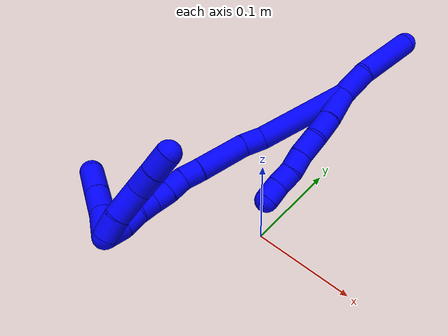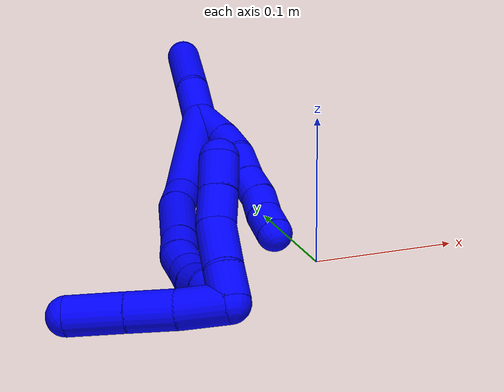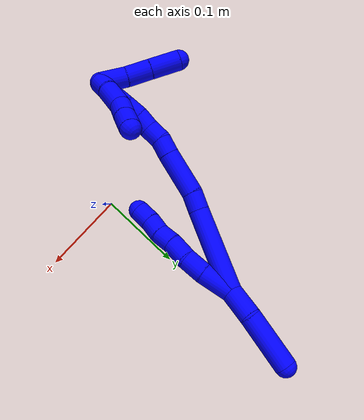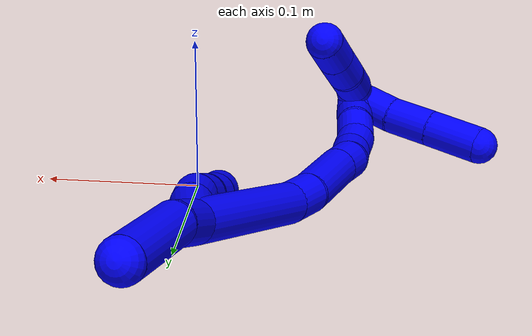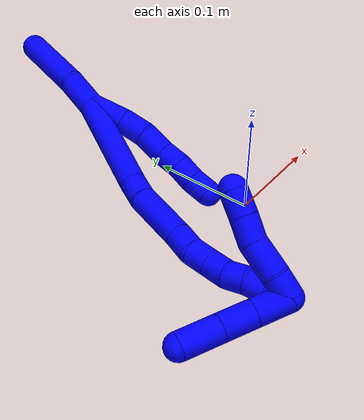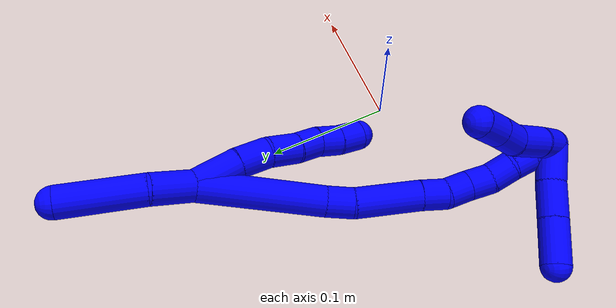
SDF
<sdf version="1.7">
 <world name="default">
  <model name="1">
   <static>0</static>
   <link name="1">
    <collision name="collision-cylinder-e_1_2_8">
     <pose>0.006575 -0.00136 -0.017717 3.06496 0.354384 2.71982</pose>
     <geometry><cylinder><radius>0.0125</radius><length>0.037893</length></cylinder></geometry>
     <surface>
      <friction><ode><mu>1.16</mu><mu2>1.16</mu2><slip1>0</slip1><slip2>0</slip2></ode></friction>
      <contact><ode><kp>1e+06</kp><kd>1</kd><max_vel>0</max_vel><min_depth>0.001</min_depth></ode></contact>
     </surface>
    </collision>
    <visual name="visual-cylinder-e_1_2_8">
     <pose>0.006575 -0.00136 -0.017717 3.06496 0.354384 2.71982</pose>
     <geometry><cylinder><radius>0.0125</radius><length>0.037893</length></cylinder></geometry>
     <material><ambient>0 0 1 1</ambient></material>
    </visual>
    <collision name="collision-cylinder-e_2_8_9">
     <pose>0.016116 -0.004175 -0.047985 3.02623 0.230641 2.21671</pose>
     <geometry><cylinder><radius>0.0125</radius><length>0.025958</length></cylinder></geometry>
     <surface>
      <friction><ode><mu>1.16</mu><mu2>1.16</mu2><slip1>0</slip1><slip2>0</slip2></ode></friction>
      <contact><ode><kp>1e+06</kp><kd>1</kd><max_vel>0</max_vel><min_depth>0.001</min_depth></ode></contact>
     </surface>
    </collision>
    <visual name="visual-cylinder-e_2_8_9">
     <pose>0.016116 -0.004175 -0.047985 3.02623 0.230641 2.21671</pose>
     <geometry><cylinder><radius>0.0125</radius><length>0.025958</length></cylinder></geometry>
     <material><ambient>0 0 1 1</ambient></material>
    </visual>
    <collision name="collision-cylinder-e_3_9_10">
     <pose>0.019458 -0.005854 -0.073402 3.12411 0.029086 2.05923</pose>
     <geometry><cylinder><radius>0.0125</radius><length>0.025745</length></cylinder></geometry>
     <surface>
      <friction><ode><mu>1.16</mu><mu2>1.16</mu2><slip1>0</slip1><slip2>0</slip2></ode></friction>
      <contact><ode><kp>1e+06</kp><kd>1</kd><max_vel>0</max_vel><min_depth>0.001</min_depth></ode></contact>
     </surface>
    </collision>
    <visual name="visual-cylinder-e_3_9_10">
     <pose>0.019458 -0.005854 -0.073402 3.12411 0.029086 2.05923</pose>
     <geometry><cylinder><radius>0.0125</radius><length>0.025745</length></cylinder></geometry>
     <material><ambient>0 0 1 1</ambient></material>
    </visual>
    <collision name="collision-cylinder-e_4_10_11">
     <pose>0.0215 -0.005412 -0.096281 -3.07506 0.164712 -2.37512</pose>
     <geometry><cylinder><radius>0.0125</radius><length>0.020349</length></cylinder></geometry>
     <surface>
      <friction><ode><mu>1.16</mu><mu2>1.16</mu2><slip1>0</slip1><slip2>0</slip2></ode></friction>
      <contact><ode><kp>1e+06</kp><kd>1</kd><max_vel>0</max_vel><min_depth>0.001</min_depth></ode></contact>
     </surface>
    </collision>
    <visual name="visual-cylinder-e_4_10_11">
     <pose>0.0215 -0.005412 -0.096281 -3.07506 0.164712 -2.37512</pose>
     <geometry><cylinder><radius>0.0125</radius><length>0.020349</length></cylinder></geometry>
     <material><ambient>0 0 1 1</ambient></material>
    </visual>
    <collision name="collision-cylinder-e_5_11_12">
     <pose>0.022927 -0.00556 -0.116279 3.06006 -0.024073 -0.573949</pose>
     <geometry><cylinder><radius>0.0125</radius><length>0.020038</length></cylinder></geometry>
     <surface>
      <friction><ode><mu>1.16</mu><mu2>1.16</mu2><slip1>0</slip1><slip2>0</slip2></ode></friction>
      <contact><ode><kp>1e+06</kp><kd>1</kd><max_vel>0</max_vel><min_depth>0.001</min_depth></ode></contact>
     </surface>
    </collision>
    <visual name="visual-cylinder-e_5_11_12">
     <pose>0.022927 -0.00556 -0.116279 3.06006 -0.024073 -0.573949</pose>
     <geometry><cylinder><radius>0.0125</radius><length>0.020038</length></cylinder></geometry>
     <material><ambient>0 0 1 1</ambient></material>
    </visual>
    <collision name="collision-cylinder-e_6_12_6">
     <pose>0.024022 -0.006961 -0.136163 3.08262 0.133871 2.31264</pose>
     <geometry><cylinder><radius>0.0125</radius><length>0.020017</length></cylinder></geometry>
     <surface>
      <friction><ode><mu>1.16</mu><mu2>1.16</mu2><slip1>0</slip1><slip2>0</slip2></ode></friction>
      <contact><ode><kp>1e+06</kp><kd>1</kd><max_vel>0</max_vel><min_depth>0.001</min_depth></ode></contact>
     </surface>
    </collision>
    <visual name="visual-cylinder-e_6_12_6">
     <pose>0.024022 -0.006961 -0.136163 3.08262 0.133871 2.31264</pose>
     <geometry><cylinder><radius>0.0125</radius><length>0.020017</length></cylinder></geometry>
     <material><ambient>0 0 1 1</ambient></material>
    </visual>
    <collision name="collision-cylinder-e_1_2_13">
     <pose>0.00074 0.001197 0.017377 -0.068751 0.042487 -0.001461</pose>
     <geometry><cylinder><radius>0.0125</radius><length>0.034867</length></cylinder></geometry>
     <surface>
      <friction><ode><mu>1.16</mu><mu2>1.16</mu2><slip1>0</slip1><slip2>0</slip2></ode></friction>
      <contact><ode><kp>1e+06</kp><kd>1</kd><max_vel>0</max_vel><min_depth>0.001</min_depth></ode></contact>
     </surface>
    </collision>
    <visual name="visual-cylinder-e_1_2_13">
     <pose>0.00074 0.001197 0.017377 -0.068751 0.042487 -0.001461</pose>
     <geometry><cylinder><radius>0.0125</radius><length>0.034867</length></cylinder></geometry>
     <material><ambient>0 0 1 1</ambient></material>
    </visual>
    <collision name="collision-cylinder-e_2_13_5">
     <pose>0.000281 0.011952 0.065862 -0.29812 -0.036841 0.005533</pose>
     <geometry><cylinder><radius>0.0125</radius><length>0.065133</length></cylinder></geometry>
     <surface>
      <friction><ode><mu>1.16</mu><mu2>1.16</mu2><slip1>0</slip1><slip2>0</slip2></ode></friction>
      <contact><ode><kp>1e+06</kp><kd>1</kd><max_vel>0</max_vel><min_depth>0.001</min_depth></ode></contact>
     </surface>
    </collision>
    <visual name="visual-cylinder-e_2_13_5">
     <pose>0.000281 0.011952 0.065862 -0.29812 -0.036841 0.005533</pose>
     <geometry><cylinder><radius>0.0125</radius><length>0.065133</length></cylinder></geometry>
     <material><ambient>0 0 1 1</ambient></material>
    </visual>
    <collision name="collision-cylinder-e_1_2_14">
     <pose>-0.011248 -0.015532 -0.047216 2.82379 -0.222553 -1.21778</pose>
     <geometry><cylinder><radius>0.0125</radius><length>0.101923</length></cylinder></geometry>
     <surface>
      <friction><ode><mu>1.16</mu><mu2>1.16</mu2><slip1>0</slip1><slip2>0</slip2></ode></friction>
      <contact><ode><kp>1e+06</kp><kd>1</kd><max_vel>0</max_vel><min_depth>0.001</min_depth></ode></contact>
     </surface>
    </collision>
    <visual name="visual-cylinder-e_1_2_14">
     <pose>-0.011248 -0.015532 -0.047216 2.82379 -0.222553 -1.21778</pose>
     <geometry><cylinder><radius>0.0125</radius><length>0.101923</length></cylinder></geometry>
     <material><ambient>0 0 1 1</ambient></material>
    </visual>
    <collision name="collision-cylinder-e_2_14_15">
     <pose>-0.024251 -0.036373 -0.104368 2.65081 -0.154476 -0.599437</pose>
     <geometry><cylinder><radius>0.0125</radius><length>0.022806</length></cylinder></geometry>
     <surface>
      <friction><ode><mu>1.16</mu><mu2>1.16</mu2><slip1>0</slip1><slip2>0</slip2></ode></friction>
      <contact><ode><kp>1e+06</kp><kd>1</kd><max_vel>0</max_vel><min_depth>0.001</min_depth></ode></contact>
     </surface>
    </collision>
    <visual name="visual-cylinder-e_2_14_15">
     <pose>-0.024251 -0.036373 -0.104368 2.65081 -0.154476 -0.599437</pose>
     <geometry><cylinder><radius>0.0125</radius><length>0.022806</length></cylinder></geometry>
     <material><ambient>0 0 1 1</ambient></material>
    </visual>
    <collision name="collision-cylinder-e_3_15_16">
     <pose>-0.025507 -0.052169 -0.139265 2.74387 0.018422 0.091351</pose>
     <geometry><cylinder><radius>0.0125</radius><length>0.054155</length></cylinder></geometry>
     <surface>
      <friction><ode><mu>1.16</mu><mu2>1.16</mu2><slip1>0</slip1><slip2>0</slip2></ode></friction>
      <contact><ode><kp>1e+06</kp><kd>1</kd><max_vel>0</max_vel><min_depth>0.001</min_depth></ode></contact>
     </surface>
    </collision>
    <visual name="visual-cylinder-e_3_15_16">
     <pose>-0.025507 -0.052169 -0.139265 2.74387 0.018422 0.091351</pose>
     <geometry><cylinder><radius>0.0125</radius><length>0.054155</length></cylinder></geometry>
     <material><ambient>0 0 1 1</ambient></material>
    </visual>
    <collision name="collision-cylinder-e_4_16_17">
     <pose>-0.025484 -0.066839 -0.173775 2.72872 -0.045625 -0.217044</pose>
     <geometry><cylinder><radius>0.0125</radius><length>0.020875</length></cylinder></geometry>
     <surface>
      <friction><ode><mu>1.16</mu><mu2>1.16</mu2><slip1>0</slip1><slip2>0</slip2></ode></friction>
      <contact><ode><kp>1e+06</kp><kd>1</kd><max_vel>0</max_vel><min_depth>0.001</min_depth></ode></contact>
     </surface>
    </collision>
    <visual name="visual-cylinder-e_4_16_17">
     <pose>-0.025484 -0.066839 -0.173775 2.72872 -0.045625 -0.217044</pose>
     <geometry><cylinder><radius>0.0125</radius><length>0.020875</length></cylinder></geometry>
     <material><ambient>0 0 1 1</ambient></material>
    </visual>
    <collision name="collision-cylinder-e_5_17_18">
     <pose>-0.023749 -0.073414 -0.192864 2.89592 0.221193 1.46508</pose>
     <geometry><cylinder><radius>0.0125</radius><length>0.020157</length></cylinder></geometry>
     <surface>
      <friction><ode><mu>1.16</mu><mu2>1.16</mu2><slip1>0</slip1><slip2>0</slip2></ode></friction>
      <contact><ode><kp>1e+06</kp><kd>1</kd><max_vel>0</max_vel><min_depth>0.001</min_depth></ode></contact>
     </surface>
    </collision>
    <visual name="visual-cylinder-e_5_17_18">
     <pose>-0.023749 -0.073414 -0.192864 2.89592 0.221193 1.46508</pose>
     <geometry><cylinder><radius>0.0125</radius><length>0.020157</length></cylinder></geometry>
     <material><ambient>0 0 1 1</ambient></material>
    </visual>
    <collision name="collision-cylinder-e_6_18_19">
     <pose>-0.019508 -0.079798 -0.21136 2.72237 0.204044 0.897066</pose>
     <geometry><cylinder><radius>0.0125</radius><length>0.020032</length></cylinder></geometry>
     <surface>
      <friction><ode><mu>1.16</mu><mu2>1.16</mu2><slip1>0</slip1><slip2>0</slip2></ode></friction>
      <contact><ode><kp>1e+06</kp><kd>1</kd><max_vel>0</max_vel><min_depth>0.001</min_depth></ode></contact>
     </surface>
    </collision>
    <visual name="visual-cylinder-e_6_18_19">
     <pose>-0.019508 -0.079798 -0.21136 2.72237 0.204044 0.897066</pose>
     <geometry><cylinder><radius>0.0125</radius><length>0.020032</length></cylinder></geometry>
     <material><ambient>0 0 1 1</ambient></material>
    </visual>
    <collision name="collision-cylinder-e_7_19_20">
     <pose>-0.013048 -0.088067 -0.228213 2.64507 0.458371 1.48782</pose>
     <geometry><cylinder><radius>0.0125</radius><length>0.020023</length></cylinder></geometry>
     <surface>
      <friction><ode><mu>1.16</mu><mu2>1.16</mu2><slip1>0</slip1><slip2>0</slip2></ode></friction>
      <contact><ode><kp>1e+06</kp><kd>1</kd><max_vel>0</max_vel><min_depth>0.001</min_depth></ode></contact>
     </surface>
    </collision>
    <visual name="visual-cylinder-e_7_19_20">
     <pose>-0.013048 -0.088067 -0.228213 2.64507 0.458371 1.48782</pose>
     <geometry><cylinder><radius>0.0125</radius><length>0.020023</length></cylinder></geometry>
     <material><ambient>0 0 1 1</ambient></material>
    </visual>
    <collision name="collision-cylinder-e_8_20_21">
     <pose>-0.005304 -0.094934 -0.245181 2.86357 0.337809 1.76738</pose>
     <geometry><cylinder><radius>0.0125</radius><length>0.020003</length></cylinder></geometry>
     <surface>
      <friction><ode><mu>1.16</mu><mu2>1.16</mu2><slip1>0</slip1><slip2>0</slip2></ode></friction>
      <contact><ode><kp>1e+06</kp><kd>1</kd><max_vel>0</max_vel><min_depth>0.001</min_depth></ode></contact>
     </surface>
    </collision>
    <visual name="visual-cylinder-e_8_20_21">
     <pose>-0.005304 -0.094934 -0.245181 2.86357 0.337809 1.76738</pose>
     <geometry><cylinder><radius>0.0125</radius><length>0.020003</length></cylinder></geometry>
     <material><ambient>0 0 1 1</ambient></material>
    </visual>
    <collision name="collision-cylinder-e_9_21_1">
     <pose>0.002205 -0.102726 -0.261712 2.53248 0.43222 1.21932</pose>
     <geometry><cylinder><radius>0.0125</radius><length>0.020026</length></cylinder></geometry>
     <surface>
      <friction><ode><mu>1.16</mu><mu2>1.16</mu2><slip1>0</slip1><slip2>0</slip2></ode></friction>
      <contact><ode><kp>1e+06</kp><kd>1</kd><max_vel>0</max_vel><min_depth>0.001</min_depth></ode></contact>
     </surface>
    </collision>
    <visual name="visual-cylinder-e_9_21_1">
     <pose>0.002205 -0.102726 -0.261712 2.53248 0.43222 1.21932</pose>
     <geometry><cylinder><radius>0.0125</radius><length>0.020026</length></cylinder></geometry>
     <material><ambient>0 0 1 1</ambient></material>
    </visual>
    <collision name="collision-cylinder-e_1_1_22">
     <pose>-0.008772 -0.110297 -0.264132 0.439613 -1.21917 -0.309527</pose>
     <geometry><cylinder><radius>0.0125</radius><length>0.03232</length></cylinder></geometry>
     <surface>
      <friction><ode><mu>1.16</mu><mu2>1.16</mu2><slip1>0</slip1><slip2>0</slip2></ode></friction>
      <contact><ode><kp>1e+06</kp><kd>1</kd><max_vel>0</max_vel><min_depth>0.001</min_depth></ode></contact>
     </surface>
    </collision>
    <visual name="visual-cylinder-e_1_1_22">
     <pose>-0.008772 -0.110297 -0.264132 0.439613 -1.21917 -0.309527</pose>
     <geometry><cylinder><radius>0.0125</radius><length>0.03232</length></cylinder></geometry>
     <material><ambient>0 0 1 1</ambient></material>
    </visual>
    <collision name="collision-cylinder-e_2_22_23">
     <pose>-0.037955 -0.11662 -0.254485 0.708927 -1.16174 -0.476638</pose>
     <geometry><cylinder><radius>0.0125</radius><length>0.030543</length></cylinder></geometry>
     <surface>
      <friction><ode><mu>1.16</mu><mu2>1.16</mu2><slip1>0</slip1><slip2>0</slip2></ode></friction>
      <contact><ode><kp>1e+06</kp><kd>1</kd><max_vel>0</max_vel><min_depth>0.001</min_depth></ode></contact>
     </surface>
    </collision>
    <visual name="visual-cylinder-e_2_22_23">
     <pose>-0.037955 -0.11662 -0.254485 0.708927 -1.16174 -0.476638</pose>
     <geometry><cylinder><radius>0.0125</radius><length>0.030543</length></cylinder></geometry>
     <material><ambient>0 0 1 1</ambient></material>
    </visual>
    <collision name="collision-cylinder-e_3_23_4">
     <pose>-0.069046 -0.125242 -0.244284 0.695706 -1.16773 -0.470278</pose>
     <geometry><cylinder><radius>0.0125</radius><length>0.037137</length></cylinder></geometry>
     <surface>
      <friction><ode><mu>1.16</mu><mu2>1.16</mu2><slip1>0</slip1><slip2>0</slip2></ode></friction>
      <contact><ode><kp>1e+06</kp><kd>1</kd><max_vel>0</max_vel><min_depth>0.001</min_depth></ode></contact>
     </surface>
    </collision>
    <visual name="visual-cylinder-e_3_23_4">
     <pose>-0.069046 -0.125242 -0.244284 0.695706 -1.16773 -0.470278</pose>
     <geometry><cylinder><radius>0.0125</radius><length>0.037137</length></cylinder></geometry>
     <material><ambient>0 0 1 1</ambient></material>
    </visual>
    <collision name="collision-cylinder-e_1_1_24">
     <pose>0.008171 -0.110596 -0.25846 0.244172 0.159116 0.019564</pose>
     <geometry><cylinder><radius>0.0125</radius><length>0.022356</length></cylinder></geometry>
     <surface>
      <friction><ode><mu>1.16</mu><mu2>1.16</mu2><slip1>0</slip1><slip2>0</slip2></ode></friction>
      <contact><ode><kp>1e+06</kp><kd>1</kd><max_vel>0</max_vel><min_depth>0.001</min_depth></ode></contact>
     </surface>
    </collision>
    <visual name="visual-cylinder-e_1_1_24">
     <pose>0.008171 -0.110596 -0.25846 0.244172 0.159116 0.019564</pose>
     <geometry><cylinder><radius>0.0125</radius><length>0.022356</length></cylinder></geometry>
     <material><ambient>0 0 1 1</ambient></material>
    </visual>
    <collision name="collision-cylinder-e_2_24_25">
     <pose>0.012051 -0.114559 -0.232332 0.083784 0.135482 0.005688</pose>
     <geometry><cylinder><radius>0.0125</radius><length>0.031232</length></cylinder></geometry>
     <surface>
      <friction><ode><mu>1.16</mu><mu2>1.16</mu2><slip1>0</slip1><slip2>0</slip2></ode></friction>
      <contact><ode><kp>1e+06</kp><kd>1</kd><max_vel>0</max_vel><min_depth>0.001</min_depth></ode></contact>
     </surface>
    </collision>
    <visual name="visual-cylinder-e_2_24_25">
     <pose>0.012051 -0.114559 -0.232332 0.083784 0.135482 0.005688</pose>
     <geometry><cylinder><radius>0.0125</radius><length>0.031232</length></cylinder></geometry>
     <material><ambient>0 0 1 1</ambient></material>
    </visual>
    <collision name="collision-cylinder-e_3_25_26">
     <pose>0.018641 -0.117805 -0.206556 0.186197 0.401937 0.038037</pose>
     <geometry><cylinder><radius>0.0125</radius><length>0.022906</length></cylinder></geometry>
     <surface>
      <friction><ode><mu>1.16</mu><mu2>1.16</mu2><slip1>0</slip1><slip2>0</slip2></ode></friction>
      <contact><ode><kp>1e+06</kp><kd>1</kd><max_vel>0</max_vel><min_depth>0.001</min_depth></ode></contact>
     </surface>
    </collision>
    <visual name="visual-cylinder-e_3_25_26">
     <pose>0.018641 -0.117805 -0.206556 0.186197 0.401937 0.038037</pose>
     <geometry><cylinder><radius>0.0125</radius><length>0.022906</length></cylinder></geometry>
     <material><ambient>0 0 1 1</ambient></material>
    </visual>
    <collision name="collision-cylinder-e_4_26_3">
     <pose>0.027261 -0.121741 -0.185378 0.181371 0.359988 0.033091</pose>
     <geometry><cylinder><radius>0.0125</radius><length>0.023507</length></cylinder></geometry>
     <surface>
      <friction><ode><mu>1.16</mu><mu2>1.16</mu2><slip1>0</slip1><slip2>0</slip2></ode></friction>
      <contact><ode><kp>1e+06</kp><kd>1</kd><max_vel>0</max_vel><min_depth>0.001</min_depth></ode></contact>
     </surface>
    </collision>
    <visual name="visual-cylinder-e_4_26_3">
     <pose>0.027261 -0.121741 -0.185378 0.181371 0.359988 0.033091</pose>
     <geometry><cylinder><radius>0.0125</radius><length>0.023507</length></cylinder></geometry>
     <material><ambient>0 0 1 1</ambient></material>
    </visual>
    <collision name="collision-sphere-3">
     <pose>0.031402 -0.123725 -0.174559 0 -0 0</pose>
     <geometry><sphere><radius>0.0125</radius></sphere></geometry>
     <surface>
      <friction><ode><mu>1.16</mu><mu2>1.16</mu2><slip1>0</slip1><slip2>0</slip2></ode></friction>
      <contact><ode><kp>1e+06</kp><kd>1</kd><max_vel>0</max_vel><min_depth>0.001</min_depth></ode></contact>
     </surface>
    </collision>
    <visual name="visual-sphere-3">
     <pose>0.031402 -0.123725 -0.174559 0 -0 0</pose>
     <geometry><sphere><radius>0.0125</radius></sphere></geometry>
     <material><ambient>0 0 1 1</ambient></material>
    </visual>
    <collision name="collision-sphere-26">
     <pose>0.023121 -0.119756 -0.196198 0 -0 0</pose>
     <geometry><sphere><radius>0.0125</radius></sphere></geometry>
     <surface>
      <friction><ode><mu>1.16</mu><mu2>1.16</mu2><slip1>0</slip1><slip2>0</slip2></ode></friction>
      <contact><ode><kp>1e+06</kp><kd>1</kd><max_vel>0</max_vel><min_depth>0.001</min_depth></ode></contact>
     </surface>
    </collision>
    <visual name="visual-sphere-26">
     <pose>0.023121 -0.119756 -0.196198 0 -0 0</pose>
     <geometry><sphere><radius>0.0125</radius></sphere></geometry>
     <material><ambient>0 0 1 1</ambient></material>
    </visual>
    <collision name="collision-sphere-25">
     <pose>0.01416 -0.115854 -0.216914 0 -0 0</pose>
     <geometry><sphere><radius>0.0125</radius></sphere></geometry>
     <surface>
      <friction><ode><mu>1.16</mu><mu2>1.16</mu2><slip1>0</slip1><slip2>0</slip2></ode></friction>
      <contact><ode><kp>1e+06</kp><kd>1</kd><max_vel>0</max_vel><min_depth>0.001</min_depth></ode></contact>
     </surface>
    </collision>
    <visual name="visual-sphere-25">
     <pose>0.01416 -0.115854 -0.216914 0 -0 0</pose>
     <geometry><sphere><radius>0.0125</radius></sphere></geometry>
     <material><ambient>0 0 1 1</ambient></material>
    </visual>
    <collision name="collision-sphere-24">
     <pose>0.009942 -0.113264 -0.247751 0 -0 0</pose>
     <geometry><sphere><radius>0.0125</radius></sphere></geometry>
     <surface>
      <friction><ode><mu>1.16</mu><mu2>1.16</mu2><slip1>0</slip1><slip2>0</slip2></ode></friction>
      <contact><ode><kp>1e+06</kp><kd>1</kd><max_vel>0</max_vel><min_depth>0.001</min_depth></ode></contact>
     </surface>
    </collision>
    <visual name="visual-sphere-24">
     <pose>0.009942 -0.113264 -0.247751 0 -0 0</pose>
     <geometry><sphere><radius>0.0125</radius></sphere></geometry>
     <material><ambient>0 0 1 1</ambient></material>
    </visual>
    <collision name="collision-sphere-4">
     <pose>-0.086127 -0.12991 -0.238693 0 -0 0</pose>
     <geometry><sphere><radius>0.0125</radius></sphere></geometry>
     <surface>
      <friction><ode><mu>1.16</mu><mu2>1.16</mu2><slip1>0</slip1><slip2>0</slip2></ode></friction>
      <contact><ode><kp>1e+06</kp><kd>1</kd><max_vel>0</max_vel><min_depth>0.001</min_depth></ode></contact>
     </surface>
    </collision>
    <visual name="visual-sphere-4">
     <pose>-0.086127 -0.12991 -0.238693 0 -0 0</pose>
     <geometry><sphere><radius>0.0125</radius></sphere></geometry>
     <material><ambient>0 0 1 1</ambient></material>
    </visual>
    <collision name="collision-sphere-23">
     <pose>-0.051966 -0.120574 -0.249874 0 -0 0</pose>
     <geometry><sphere><radius>0.0125</radius></sphere></geometry>
     <surface>
      <friction><ode><mu>1.16</mu><mu2>1.16</mu2><slip1>0</slip1><slip2>0</slip2></ode></friction>
      <contact><ode><kp>1e+06</kp><kd>1</kd><max_vel>0</max_vel><min_depth>0.001</min_depth></ode></contact>
     </surface>
    </collision>
    <visual name="visual-sphere-23">
     <pose>-0.051966 -0.120574 -0.249874 0 -0 0</pose>
     <geometry><sphere><radius>0.0125</radius></sphere></geometry>
     <material><ambient>0 0 1 1</ambient></material>
    </visual>
    <collision name="collision-sphere-22">
     <pose>-0.023943 -0.112666 -0.259096 0 -0 0</pose>
     <geometry><sphere><radius>0.0125</radius></sphere></geometry>
     <surface>
      <friction><ode><mu>1.16</mu><mu2>1.16</mu2><slip1>0</slip1><slip2>0</slip2></ode></friction>
      <contact><ode><kp>1e+06</kp><kd>1</kd><max_vel>0</max_vel><min_depth>0.001</min_depth></ode></contact>
     </surface>
    </collision>
    <visual name="visual-sphere-22">
     <pose>-0.023943 -0.112666 -0.259096 0 -0 0</pose>
     <geometry><sphere><radius>0.0125</radius></sphere></geometry>
     <material><ambient>0 0 1 1</ambient></material>
    </visual>
    <collision name="collision-sphere-1">
     <pose>0.0064 -0.107928 -0.269169 0 -0 0</pose>
     <geometry><sphere><radius>0.0125</radius></sphere></geometry>
     <surface>
      <friction><ode><mu>1.16</mu><mu2>1.16</mu2><slip1>0</slip1><slip2>0</slip2></ode></friction>
      <contact><ode><kp>1e+06</kp><kd>1</kd><max_vel>0</max_vel><min_depth>0.001</min_depth></ode></contact>
     </surface>
    </collision>
    <visual name="visual-sphere-1">
     <pose>0.0064 -0.107928 -0.269169 0 -0 0</pose>
     <geometry><sphere><radius>0.0125</radius></sphere></geometry>
     <material><ambient>0 0 1 1</ambient></material>
    </visual>
    <collision name="collision-sphere-21">
     <pose>-0.001989 -0.097524 -0.254255 0 -0 0</pose>
     <geometry><sphere><radius>0.0125</radius></sphere></geometry>
     <surface>
      <friction><ode><mu>1.16</mu><mu2>1.16</mu2><slip1>0</slip1><slip2>0</slip2></ode></friction>
      <contact><ode><kp>1e+06</kp><kd>1</kd><max_vel>0</max_vel><min_depth>0.001</min_depth></ode></contact>
     </surface>
    </collision>
    <visual name="visual-sphere-21">
     <pose>-0.001989 -0.097524 -0.254255 0 -0 0</pose>
     <geometry><sphere><radius>0.0125</radius></sphere></geometry>
     <material><ambient>0 0 1 1</ambient></material>
    </visual>
    <collision name="collision-sphere-12">
     <pose>0.022686 -0.006376 -0.126262 0 -0 0</pose>
     <geometry><sphere><radius>0.0125</radius></sphere></geometry>
     <surface>
      <friction><ode><mu>1.16</mu><mu2>1.16</mu2><slip1>0</slip1><slip2>0</slip2></ode></friction>
      <contact><ode><kp>1e+06</kp><kd>1</kd><max_vel>0</max_vel><min_depth>0.001</min_depth></ode></contact>
     </surface>
    </collision>
    <visual name="visual-sphere-12">
     <pose>0.022686 -0.006376 -0.126262 0 -0 0</pose>
     <geometry><sphere><radius>0.0125</radius></sphere></geometry>
     <material><ambient>0 0 1 1</ambient></material>
    </visual>
    <collision name="collision-sphere-11">
     <pose>0.023169 -0.004745 -0.106296 0 -0 0</pose>
     <geometry><sphere><radius>0.0125</radius></sphere></geometry>
     <surface>
      <friction><ode><mu>1.16</mu><mu2>1.16</mu2><slip1>0</slip1><slip2>0</slip2></ode></friction>
      <contact><ode><kp>1e+06</kp><kd>1</kd><max_vel>0</max_vel><min_depth>0.001</min_depth></ode></contact>
     </surface>
    </collision>
    <visual name="visual-sphere-11">
     <pose>0.023169 -0.004745 -0.106296 0 -0 0</pose>
     <geometry><sphere><radius>0.0125</radius></sphere></geometry>
     <material><ambient>0 0 1 1</ambient></material>
    </visual>
    <collision name="collision-sphere-10">
     <pose>0.019832 -0.006079 -0.086267 0 -0 0</pose>
     <geometry><sphere><radius>0.0125</radius></sphere></geometry>
     <surface>
      <friction><ode><mu>1.16</mu><mu2>1.16</mu2><slip1>0</slip1><slip2>0</slip2></ode></friction>
      <contact><ode><kp>1e+06</kp><kd>1</kd><max_vel>0</max_vel><min_depth>0.001</min_depth></ode></contact>
     </surface>
    </collision>
    <visual name="visual-sphere-10">
     <pose>0.019832 -0.006079 -0.086267 0 -0 0</pose>
     <geometry><sphere><radius>0.0125</radius></sphere></geometry>
     <material><ambient>0 0 1 1</ambient></material>
    </visual>
    <collision name="collision-sphere-9">
     <pose>0.019083 -0.005629 -0.060536 0 -0 0</pose>
     <geometry><sphere><radius>0.0125</radius></sphere></geometry>
     <surface>
      <friction><ode><mu>1.16</mu><mu2>1.16</mu2><slip1>0</slip1><slip2>0</slip2></ode></friction>
      <contact><ode><kp>1e+06</kp><kd>1</kd><max_vel>0</max_vel><min_depth>0.001</min_depth></ode></contact>
     </surface>
    </collision>
    <visual name="visual-sphere-9">
     <pose>0.019083 -0.005629 -0.060536 0 -0 0</pose>
     <geometry><sphere><radius>0.0125</radius></sphere></geometry>
     <material><ambient>0 0 1 1</ambient></material>
    </visual>
    <collision name="collision-sphere-2">
     <geometry><sphere><radius>0.0125</radius></sphere></geometry>
     <surface>
      <friction><ode><mu>1.16</mu><mu2>1.16</mu2><slip1>0</slip1><slip2>0</slip2></ode></friction>
      <contact><ode><kp>1e+06</kp><kd>1</kd><max_vel>0</max_vel><min_depth>0.001</min_depth></ode></contact>
     </surface>
    </collision>
    <visual name="visual-sphere-2">
     <geometry><sphere><radius>0.0125</radius></sphere></geometry>
     <material><ambient>0 0 1 1</ambient></material>
    </visual>
    <collision name="collision-sphere-19">
     <pose>-0.017478 -0.08379 -0.220319 0 -0 0</pose>
     <geometry><sphere><radius>0.0125</radius></sphere></geometry>
     <surface>
      <friction><ode><mu>1.16</mu><mu2>1.16</mu2><slip1>0</slip1><slip2>0</slip2></ode></friction>
      <contact><ode><kp>1e+06</kp><kd>1</kd><max_vel>0</max_vel><min_depth>0.001</min_depth></ode></contact>
     </surface>
    </collision>
    <visual name="visual-sphere-19">
     <pose>-0.017478 -0.08379 -0.220319 0 -0 0</pose>
     <geometry><sphere><radius>0.0125</radius></sphere></geometry>
     <material><ambient>0 0 1 1</ambient></material>
    </visual>
    <collision name="collision-sphere-8">
     <pose>0.013149 -0.002721 -0.035434 0 -0 0</pose>
     <geometry><sphere><radius>0.0125</radius></sphere></geometry>
     <surface>
      <friction><ode><mu>1.16</mu><mu2>1.16</mu2><slip1>0</slip1><slip2>0</slip2></ode></friction>
      <contact><ode><kp>1e+06</kp><kd>1</kd><max_vel>0</max_vel><min_depth>0.001</min_depth></ode></contact>
     </surface>
    </collision>
    <visual name="visual-sphere-8">
     <pose>0.013149 -0.002721 -0.035434 0 -0 0</pose>
     <geometry><sphere><radius>0.0125</radius></sphere></geometry>
     <material><ambient>0 0 1 1</ambient></material>
    </visual>
    <collision name="collision-sphere-6">
     <pose>0.025358 -0.007545 -0.146065 0 -0 0</pose>
     <geometry><sphere><radius>0.0125</radius></sphere></geometry>
     <surface>
      <friction><ode><mu>1.16</mu><mu2>1.16</mu2><slip1>0</slip1><slip2>0</slip2></ode></friction>
      <contact><ode><kp>1e+06</kp><kd>1</kd><max_vel>0</max_vel><min_depth>0.001</min_depth></ode></contact>
     </surface>
    </collision>
    <visual name="visual-sphere-6">
     <pose>0.025358 -0.007545 -0.146065 0 -0 0</pose>
     <geometry><sphere><radius>0.0125</radius></sphere></geometry>
     <material><ambient>0 0 1 1</ambient></material>
    </visual>
    <collision name="collision-sphere-13">
     <pose>0.001481 0.002393 0.034753 0 -0 0</pose>
     <geometry><sphere><radius>0.0125</radius></sphere></geometry>
     <surface>
      <friction><ode><mu>1.16</mu><mu2>1.16</mu2><slip1>0</slip1><slip2>0</slip2></ode></friction>
      <contact><ode><kp>1e+06</kp><kd>1</kd><max_vel>0</max_vel><min_depth>0.001</min_depth></ode></contact>
     </surface>
    </collision>
    <visual name="visual-sphere-13">
     <pose>0.001481 0.002393 0.034753 0 -0 0</pose>
     <geometry><sphere><radius>0.0125</radius></sphere></geometry>
     <material><ambient>0 0 1 1</ambient></material>
    </visual>
    <collision name="collision-sphere-5">
     <pose>-0.000918 0.021511 0.096971 0 -0 0</pose>
     <geometry><sphere><radius>0.0125</radius></sphere></geometry>
     <surface>
      <friction><ode><mu>1.16</mu><mu2>1.16</mu2><slip1>0</slip1><slip2>0</slip2></ode></friction>
      <contact><ode><kp>1e+06</kp><kd>1</kd><max_vel>0</max_vel><min_depth>0.001</min_depth></ode></contact>
     </surface>
    </collision>
    <visual name="visual-sphere-5">
     <pose>-0.000918 0.021511 0.096971 0 -0 0</pose>
     <geometry><sphere><radius>0.0125</radius></sphere></geometry>
     <material><ambient>0 0 1 1</ambient></material>
    </visual>
    <collision name="collision-sphere-14">
     <pose>-0.022496 -0.031063 -0.094431 0 -0 0</pose>
     <geometry><sphere><radius>0.0125</radius></sphere></geometry>
     <surface>
      <friction><ode><mu>1.16</mu><mu2>1.16</mu2><slip1>0</slip1><slip2>0</slip2></ode></friction>
      <contact><ode><kp>1e+06</kp><kd>1</kd><max_vel>0</max_vel><min_depth>0.001</min_depth></ode></contact>
     </surface>
    </collision>
    <visual name="visual-sphere-14">
     <pose>-0.022496 -0.031063 -0.094431 0 -0 0</pose>
     <geometry><sphere><radius>0.0125</radius></sphere></geometry>
     <material><ambient>0 0 1 1</ambient></material>
    </visual>
    <collision name="collision-sphere-15">
     <pose>-0.026005 -0.041684 -0.114305 0 -0 0</pose>
     <geometry><sphere><radius>0.0125</radius></sphere></geometry>
     <surface>
      <friction><ode><mu>1.16</mu><mu2>1.16</mu2><slip1>0</slip1><slip2>0</slip2></ode></friction>
      <contact><ode><kp>1e+06</kp><kd>1</kd><max_vel>0</max_vel><min_depth>0.001</min_depth></ode></contact>
     </surface>
    </collision>
    <visual name="visual-sphere-15">
     <pose>-0.026005 -0.041684 -0.114305 0 -0 0</pose>
     <geometry><sphere><radius>0.0125</radius></sphere></geometry>
     <material><ambient>0 0 1 1</ambient></material>
    </visual>
    <collision name="collision-sphere-16">
     <pose>-0.025008 -0.062655 -0.164225 0 -0 0</pose>
     <geometry><sphere><radius>0.0125</radius></sphere></geometry>
     <surface>
      <friction><ode><mu>1.16</mu><mu2>1.16</mu2><slip1>0</slip1><slip2>0</slip2></ode></friction>
      <contact><ode><kp>1e+06</kp><kd>1</kd><max_vel>0</max_vel><min_depth>0.001</min_depth></ode></contact>
     </surface>
    </collision>
    <visual name="visual-sphere-16">
     <pose>-0.025008 -0.062655 -0.164225 0 -0 0</pose>
     <geometry><sphere><radius>0.0125</radius></sphere></geometry>
     <material><ambient>0 0 1 1</ambient></material>
    </visual>
    <collision name="collision-sphere-17">
     <pose>-0.02596 -0.071022 -0.183326 0 -0 0</pose>
     <geometry><sphere><radius>0.0125</radius></sphere></geometry>
     <surface>
      <friction><ode><mu>1.16</mu><mu2>1.16</mu2><slip1>0</slip1><slip2>0</slip2></ode></friction>
      <contact><ode><kp>1e+06</kp><kd>1</kd><max_vel>0</max_vel><min_depth>0.001</min_depth></ode></contact>
     </surface>
    </collision>
    <visual name="visual-sphere-17">
     <pose>-0.02596 -0.071022 -0.183326 0 -0 0</pose>
     <geometry><sphere><radius>0.0125</radius></sphere></geometry>
     <material><ambient>0 0 1 1</ambient></material>
    </visual>
    <collision name="collision-sphere-18">
     <pose>-0.021538 -0.075805 -0.202402 0 -0 0</pose>
     <geometry><sphere><radius>0.0125</radius></sphere></geometry>
     <surface>
      <friction><ode><mu>1.16</mu><mu2>1.16</mu2><slip1>0</slip1><slip2>0</slip2></ode></friction>
      <contact><ode><kp>1e+06</kp><kd>1</kd><max_vel>0</max_vel><min_depth>0.001</min_depth></ode></contact>
     </surface>
    </collision>
    <visual name="visual-sphere-18">
     <pose>-0.021538 -0.075805 -0.202402 0 -0 0</pose>
     <geometry><sphere><radius>0.0125</radius></sphere></geometry>
     <material><ambient>0 0 1 1</ambient></material>
    </visual>
    <collision name="collision-sphere-20">
     <pose>-0.008618 -0.092344 -0.236107 0 -0 0</pose>
     <geometry><sphere><radius>0.0125</radius></sphere></geometry>
     <surface>
      <friction><ode><mu>1.16</mu><mu2>1.16</mu2><slip1>0</slip1><slip2>0</slip2></ode></friction>
      <contact><ode><kp>1e+06</kp><kd>1</kd><max_vel>0</max_vel><min_depth>0.001</min_depth></ode></contact>
     </surface>
    </collision>
    <visual name="visual-sphere-20">
     <pose>-0.008618 -0.092344 -0.236107 0 -0 0</pose>
     <geometry><sphere><radius>0.0125</radius></sphere></geometry>
     <material><ambient>0 0 1 1</ambient></material>
    </visual>
    <inertial>
     <pose>-0.006127 -0.051561 -0.126172 0 -0 0</pose>
     <mass>0.75</mass>
     <inertia><ixx>9e-06</ixx><ixy>0</ixy><ixz>0</ixz><iyy>-6.5e-05</iyy><iyz>0</iyz><izz>4.6e-05</izz></inertia>
    </inertial>
   </link>
   <pose>-0.025469 0.171781 0.058042 -1.05231 -0.495155 -0.339718</pose>
  </model>
 </world>
</sdf>
